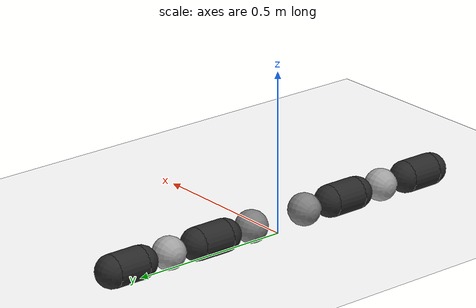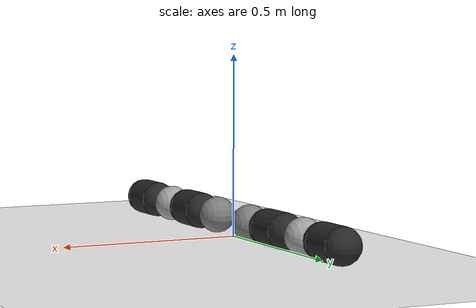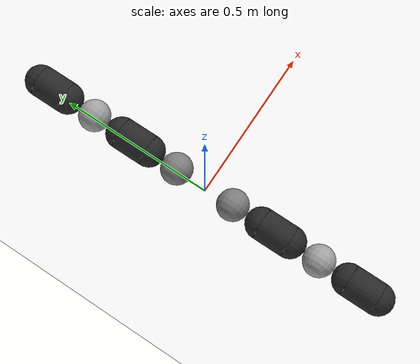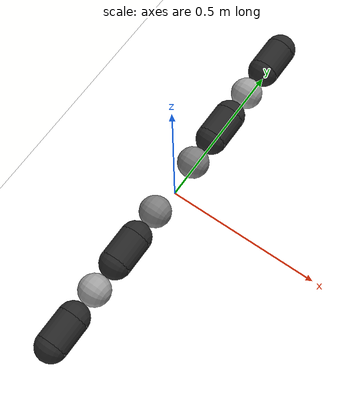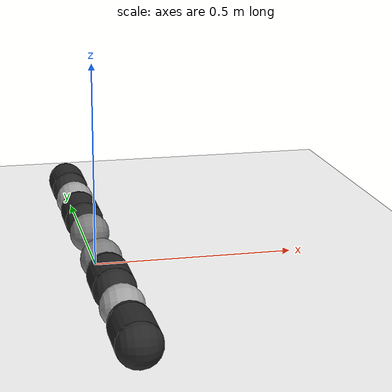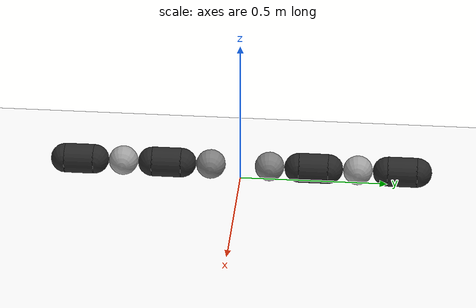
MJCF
<mujoco model="planar arm scene">

    <include file="left_arm.xml" />
    <include file="right_arm.xml" />
    <statistic center="0 0 0.05" extent="0.8" />

    <visual>
        <headlight diffuse="0.6 0.6 0.6" ambient="0.3 0.3 0.3" specular="0 0 0" />
        <rgba haze="0.15 0.25 0.35 1" />
        <global azimuth="120" elevation="-20" />
    </visual>

    <asset>
        <texture name="grid" type="2d" builtin="flat"
            rgb1="1 1 1" width="512" height="512" />
        <material name="grid" texture="grid" texrepeat="1 1" texuniform="true" reflectance="0" />
        <material name="uniform" texuniform="true" reflectance="0" specular="0" shininess="0" />
    </asset>

    <worldbody>
        <camera name="birdview" pos="-0.494 0.001 1.981"
            xyaxes="0.001 1.000 -0.000 -1.000 0.001 0.026" />
        <geom name="floor" type="plane" condim="3" size="0 0 0.050000000000000003" material="grid"
            pos="0 0 -0.02" />
        <light pos="0 0 1.5" dir="0 0 -1" directional="true" castshadow="false" />

    </worldbody>

</mujoco>

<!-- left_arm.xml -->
<mujoco model="robot_left">
  <compiler eulerseq="XYZ" autolimits="true"/>

  <default>
    <default class="left_arm"/>
  </default>
  <asset>
    <material name="la_material_1" class="left_arm" emission="0" specular="0" rgba="0.15999999642372131 0.15999999642372131 0.15999999642372131 1"/>
    <material name="la_material_2" class="left_arm" emission="0" specular="0" rgba="0.15999999642372131 0.15999999642372131 0.15999999642372131 1"/>
    <material name="la_material_3" class="left_arm" emission="0" specular="0" rgba="0.63999998569488525 0.63999998569488525 0.63999998569488525 1"/>
    <material name="la_material_4" class="left_arm" emission="0" specular="0" rgba="0.15999999642372131 0.15999999642372131 0.15999999642372131 1"/>
    <material name="la_material_5" class="left_arm" emission="0" specular="0" rgba="0.15999999642372131 0.15999999642372131 0.15999999642372131 1"/>
    <material name="la_material_6" class="left_arm" emission="0" specular="0" rgba="0.15999999642372131 0.15999999642372131 0.15999999642372131 1"/>
    <material name="la_material_7" class="left_arm" emission="0" specular="0" rgba="0.15999999642372131 0.15999999642372131 0.15999999642372131 1"/>
  </asset>
  <worldbody>
    <body name="la_0" pos="0 -0.1 0.05" euler="0 -90 0">
      <geom name="la_collision" class="left_arm" type="sphere" group="3" size="0.05" friction="0.8 0.005 0.0001" pos="0 0 0" euler="0 -0 0"/>
      <geom name="la_ball" class="left_arm" type="sphere" contype="0" conaffinity="0" group="0" size="0.05" pos="0 0 0" euler="0 -0 0"/>
      <body name="la_1" pos="0 0 0" euler="0 -0 0">
        <geom name="la_collision_0" class="left_arm" type="sphere" group="3" size="0.05" friction="0.8 0.005 0." pos="0 -0.10 0" euler="0 -0 0"/>
        <geom name="la_collision_1" class="left_arm" type="sphere" group="3" size="0.05" friction="0.8 0.005 0." pos="0 -0.20 0" euler="0 -0 0"/>
        <geom name="la_collision_2" class="left_arm" type="sphere" group="3" size="0.05" friction="0.8 0.005 0." pos="0 -0.30 0" euler="0 -0 0"/>
        <geom name="la_ball0" class="left_arm" type="sphere" contype="0" conaffinity="0" group="0" size="0.05" material="la_material_1" pos="0 -0.10 0" euler="0 -0 0"/>
        <geom name="la_ball1" class="left_arm" type="sphere" contype="0" conaffinity="0" group="0" size="0.05" material="la_material_2" pos="0 -0.20 0" euler="0 -0 0"/>
        <geom name="la_ball2" class="left_arm" type="sphere" contype="0" conaffinity="0" group="0" size="0.05" material="la_material_3" pos="0 -0.30 0" euler="0 -0 0"/>
        <geom name="cylinder" class="left_arm" type="cylinder" contype="0" conaffinity="0" group="0" size="0.05 0.05" material="la_material_4" pos="0 -0.150 0" euler="89.999999610681101 -0 0"/>
        <joint name="robot:la_joint_1" class="left_arm" type="hinge" pos="0 0 0" axis="1 0 0" limited="true" range="-90.000210459149713 0"/>
       <body name="la_2" pos="0 -0.29999999999999999 0" euler="0 -0 0">
         <geom name="la_collision_0_0" class="left_arm" type="sphere" group="3" size="0.050000000000000003" friction="0.80000000000000004 0.0050000000000000001 0.0001" pos="0 -0.10000000000000001 0" euler="0 -0 0"/>
         <geom name="la_collision_1_0" class="left_arm" type="sphere" group="3" size="0.050000000000000003" friction="0.80000000000000004 0.0050000000000000001 0.0001" pos="0 -0.20000000000000001 0" euler="0 -0 0"/>
         <geom name="la_ball0_0" class="left_arm" type="sphere" contype="0" conaffinity="0" group="0" size="0.050000000000000003" material="la_material_5" pos="0 -0.10000000000000001 0" euler="0 -0 0"/>
         <geom name="la_ball1_0" class="left_arm" type="sphere" contype="0" conaffinity="0" group="0" size="0.050000000000000003" material="la_material_6" pos="0 -0.20000000000000001 0" euler="0 -0 0"/>
         <geom name="cylinder_0" class="left_arm" type="cylinder" contype="0" conaffinity="0" group="0" size="0.050000000000000003 0.050000000000000003" material="la_material_7" pos="0 -0.14999999999999999 0" euler="89.999999610681101 -0 0"/>
         <joint name="robot:la_joint_2" class="left_arm" type="hinge" pos="0 0 0" axis="1 0 0" limited="true" range="-137.50987083139756 0"/>
       </body>
      </body>
    </body>
  </worldbody>

  <actuator>
    <position class="left_arm" name="robot:la_actuator_1" joint="robot:la_joint_1" ctrlrange="-1.57 0" kp="1"/>
  </actuator>

</mujoco>

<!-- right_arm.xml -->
<mujoco model="robot_right">
  <compiler eulerseq="XYZ" autolimits="true"/>

  <default>
    <default class="right_arm"/>
  </default>
  <asset>
    <material name="ra_material_1" class="right_arm" emission="0" specular="0" rgba="0.15999999642372131 0.15999999642372131 0.15999999642372131 1"/>
    <material name="ra_material_2" class="right_arm" emission="0" specular="0" rgba="0.15999999642372131 0.15999999642372131 0.15999999642372131 1"/>
    <material name="ra_material_3" class="right_arm" emission="0" specular="0" rgba="0.63999998569488525 0.63999998569488525 0.63999998569488525 1"/>
    <material name="ra_material_4" class="right_arm" emission="0" specular="0" rgba="0.15999999642372131 0.15999999642372131 0.15999999642372131 1"/>
    <material name="ra_material_5" class="right_arm" emission="0" specular="0" rgba="0.15999999642372131 0.15999999642372131 0.15999999642372131 1"/>
    <material name="ra_material_6" class="right_arm" emission="0" specular="0" rgba="0.15999999642372131 0.15999999642372131 0.15999999642372131 1"/>
    <material name="ra_material_7" class="right_arm" emission="0" specular="0" rgba="0.15999999642372131 0.15999999642372131 0.15999999642372131 1"/>
  </asset>
  <worldbody>
    <body name="ra_0" pos="0 0.1 0.05" euler="0 -90 0">
      <geom name="ra_collision" class="right_arm" type="sphere" group="3" size="0.050000000000000003" friction="0.80000000000000004 0.0050000000000000001 0.0001" pos="0 0 0" euler="0 -0 0"/>
      <geom name="ra_ball" class="right_arm" type="sphere" contype="0" conaffinity="0" group="0" size="0.050000000000000003" pos="0 0 0" euler="0 -0 0"/>
      <body name="ra_1" pos="0 0 0" euler="0 -0 0">
        <geom name="ra_collision_0" class="right_arm" type="sphere" group="3" size="0.050000000000000003" friction="0.80000000000000004 0.0050000000000000001 0.0001" pos="0 0.10000000000000001 0" euler="0 -0 0"/>
        <geom name="ra_collision_1" class="right_arm" type="sphere" group="3" size="0.050000000000000003" friction="0.80000000000000004 0.0050000000000000001 0.0001" pos="0 0.20000000000000001 0" euler="0 -0 0"/>
        <geom name="ra_collision_2" class="right_arm" type="sphere" group="3" size="0.050000000000000003" friction="0.80000000000000004 0.0050000000000000001 0.0001" pos="0 0.29999999999999999 0" euler="0 -0 0"/>
        <geom name="ra_ball0" class="right_arm" type="sphere" contype="0" conaffinity="0" group="0" size="0.050000000000000003" material="ra_material_1" pos="0 0.10000000000000001 0" euler="0 -0 0"/>
        <geom name="ra_ball1" class="right_arm" type="sphere" contype="0" conaffinity="0" group="0" size="0.050000000000000003" material="ra_material_2" pos="0 0.20000000000000001 0" euler="0 -0 0"/>
        <geom name="ra_ball2" class="right_arm" type="sphere" contype="0" conaffinity="0" group="0" size="0.050000000000000003" material="ra_material_3" pos="0 0.29999999999999999 0" euler="0 -0 0"/>
        <geom name="ra_cylinder" class="right_arm" type="cylinder" contype="0" conaffinity="0" group="0" size="0.050000000000000003 0.050000000000000003" material="ra_material_4" pos="0 0.14999999999999999 0" euler="89.999999610681101 -0 0"/>
        <joint name="robot:ra_joint_1" class="right_arm" type="hinge" pos="0 0 0" axis="1 0 0" limited="true" range="0 90.000210459149713"/>
        <body name="ra_2" pos="0 0.29999999999999999 0" euler="0 -0 0">
          <geom name="ra_collision_0_0" class="right_arm" type="sphere" group="3" size="0.050000000000000003" friction="0.80000000000000004 0.0050000000000000001 0.0001" pos="0 0.10000000000000001 0" euler="0 -0 0"/>
          <geom name="ra_collision_1_0" class="right_arm" type="sphere" group="3" size="0.050000000000000003" friction="0.80000000000000004 0.0050000000000000001 0.0001" pos="0 0.20000000000000001 0" euler="0 -0 0"/>
          <geom name="ra_ball0_0" class="right_arm" type="sphere" contype="0" conaffinity="0" group="0" size="0.050000000000000003" material="ra_material_5" pos="0 0.10000000000000001 0" euler="0 -0 0"/>
          <geom name="ra_ball1_0" class="right_arm" type="sphere" contype="0" conaffinity="0" group="0" size="0.050000000000000003" material="ra_material_6" pos="0 0.20000000000000001 0" euler="0 -0 0"/>
          <geom name="ra_cylinder_0" class="right_arm" type="cylinder" contype="0" conaffinity="0" group="0" size="0.050000000000000003 0.050000000000000003" material="ra_material_7" pos="0 0.14999999999999999 0" euler="89.999999610681101 -0 0"/>
          <joint name="robot:ra_joint_2" class="right_arm" type="hinge" pos="0 0 0" axis="1 0 0" limited="true" range="0 137.50987083139756"/>
        </body>
      </body>
    </body>
  </worldbody>

  <actuator>
    <position class="right_arm" name="robot:ra_actuator_1" joint="robot:ra_joint_1" kp="10"
              ctrlrange="0 1.57"/>
    <position class="right_arm" name="robot:ra_actuator_2" joint="robot:ra_joint_2" kp="10"
              ctrlrange="0 2.399828"/>
  </actuator>
</mujoco>
